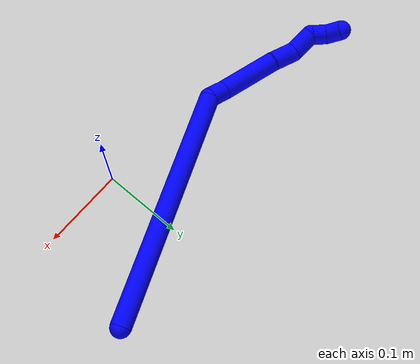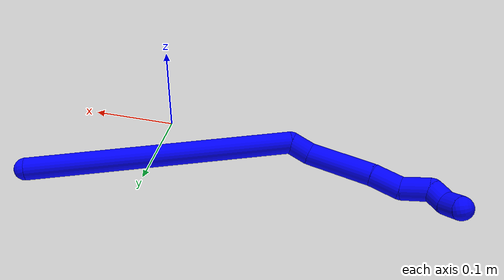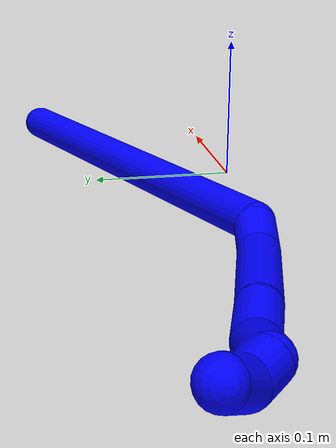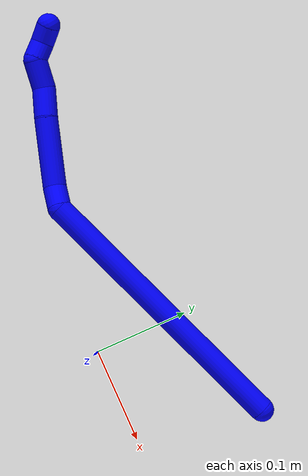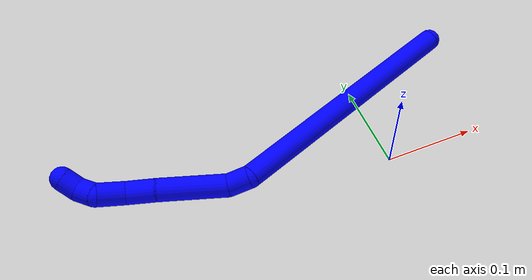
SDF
<sdf version="1.7">
 <world name="default">
  <plugin name="TubeGeneratorPlugin" filename="libtube_generator_plugin.so"/>
  <model name="photoneo_s_sensor">
   <static>1</static>
   <pose>0 0 2 1.57079 1.57079 3.14159</pose>
   <link name="link">
    <inertial><mass>0.1</mass></inertial>
    <sensor name="sensor" type="depth">
     <update_rate>30</update_rate>
     <camera>
      <horizontal_fov>1.22</horizontal_fov>
      <image><width>1920</width><height>1200</height><format>B8G8R8</format></image>
      <clip><near>0.1</near><far>4</far></clip>
      <depth_camera><output>points</output></depth_camera>
     </camera>
     <plugin name="camera_plugin" filename="libgazebo_ros_depth_camera.so">
      <baseline>0.2</baseline>
      <alwaysOn>1</alwaysOn>
      <updateRate>0.0</updateRate>
      <cameraName>camera_ir</cameraName>
      <imageTopicName>/camera/color/image_raw</imageTopicName>
      <cameraInfoTopicName>/camera/color/camera_info</cameraInfoTopicName>
      <depthImageTopicName>/camera/depth/image_raw</depthImageTopicName>
      <depthImageCameraInfoTopicName>/camera/depth/camera_info</depthImageCameraInfoTopicName>
      <pointCloudTopicName>/camera/depth/points</pointCloudTopicName>
      <frameName>fr_optical</frameName>
      <pointCloudCutoff>0.1</pointCloudCutoff>
      <pointCloudCutoffMax>2.0</pointCloudCutoffMax>
      <distortionK1>0</distortionK1>
      <distortionK2>0</distortionK2>
      <distortionK3>0</distortionK3>
      <distortionT1>0</distortionT1>
      <distortionT2>0</distortionT2>
      <CxPrime>0</CxPrime>
      <Cx>0</Cx>
      <Cy>0</Cy>
      <focalLength>0</focalLength>
      <hackBaseline>0</hackBaseline>
     </plugin>
    </sensor>
   </link>
  </model>
  <gravity>0 0 -9.8</gravity>
  <magnetic_field>6e-06 2.3e-05 -4.2e-05</magnetic_field>
  <atmosphere type="adiabatic"/>
  <physics name="default_physics" default="0" type="ode">
   <max_step_size>0.003</max_step_size>
   <real_time_factor>1</real_time_factor>
   <real_time_update_rate>1000</real_time_update_rate>
   <max_contacts>10000</max_contacts>
   <ode>
    <solver>
     <type>quick</type>
     <iters>100</iters>
     <sor>1.3</sor>
     <use_dynamic_moi_rescaling>0</use_dynamic_moi_rescaling>
    </solver>
    <constraints>
     <contact_max_correcting_vel>0</contact_max_correcting_vel>
     <contact_surface_layer>0.001</contact_surface_layer>
     <cfm>0</cfm>
     <erp>0.2</erp>
    </constraints>
   </ode>
  </physics>
  <scene><ambient>0.4 0.4 0.4 1</ambient><background>0.7 0.7 0.7 1</background><shadows>0</shadows></scene>
  <audio><device>default</device></audio>
  <spherical_coordinates>
   <surface_model>EARTH_WGS84</surface_model>
   <latitude_deg>0</latitude_deg>
   <longitude_deg>0</longitude_deg>
   <elevation>0</elevation>
   <heading_deg>0</heading_deg>
  </spherical_coordinates>
  <model name="bin">
   <static>1</static>
   <link name="bottom">
    <collision name="collision-bottom">
     <pose>0 0 -0.01 0 -0 0</pose>
     <geometry><box><size>0.8 0.6 0.02</size></box></geometry>
     <surface>
      <friction><ode><mu>100</mu><mu2>100</mu2></ode></friction>
      <contact><collide_bitmask>65535</collide_bitmask></contact>
     </surface>
    </collision>
   </link>
   <link name="west_wall">
    <collision name="collision-west_wall">
     <pose>-0.41 0 0.1 0 -0 0</pose>
     <geometry><box><size>0.02 0.6 0.2</size></box></geometry>
     <surface>
      <friction><ode><mu>100</mu><mu2>100</mu2></ode></friction>
      <contact><collide_bitmask>65535</collide_bitmask></contact>
     </surface>
    </collision>
   </link>
   <link name="east_wall">
    <collision name="collision-east_wall">
     <pose>0.41 0 0.1 0 -0 0</pose>
     <geometry><box><size>0.02 0.6 0.2</size></box></geometry>
     <surface>
      <friction><ode><mu>100</mu><mu2>100</mu2></ode></friction>
      <contact><collide_bitmask>65535</collide_bitmask></contact>
     </surface>
    </collision>
   </link>
   <link name="south_wall">
    <collision name="collision-south_wall">
     <pose>0 -0.31 0.1 0 -0 0</pose>
     <geometry><box><size>0.8 0.02 0.2</size></box></geometry>
     <surface>
      <friction><ode><mu>100</mu><mu2>100</mu2></ode></friction>
      <contact><collide_bitmask>65535</collide_bitmask></contact>
     </surface>
    </collision>
   </link>
   <link name="north_wall">
    <collision name="collision-north_wall">
     <pose>0 0.31 0.1 0 -0 0</pose>
     <geometry><box><size>0.8 0.02 0.2</size></box></geometry>
     <surface>
      <friction><ode><mu>100</mu><mu2>100</mu2></ode></friction>
      <contact><collide_bitmask>65535</collide_bitmask></contact>
     </surface>
    </collision>
   </link>
  </model>
  <model name="1">
   <static>0</static>
   <link name="1">
    <collision name="collision-cylinder-e_1_1_4">
     <pose>-0.067031 -0.03241 0.128262 0.247506 -0.468978 -0.059411</pose>
     <geometry><cylinder><radius>0.0125</radius><length>0.296613</length></cylinder></geometry>
     <surface>
      <friction><ode><mu>1.16</mu><mu2>1.16</mu2><slip1>0</slip1><slip2>0</slip2></ode></friction>
      <contact><ode><kp>1e+06</kp><kd>1</kd><max_vel>0</max_vel><min_depth>0.001</min_depth></ode></contact>
     </surface>
    </collision>
    <visual name="visual-cylinder-e_1_1_4">
     <pose>-0.067031 -0.03241 0.128262 0.247506 -0.468978 -0.059411</pose>
     <geometry><cylinder><radius>0.0125</radius><length>0.296613</length></cylinder></geometry>
     <material><ambient>0 0 1 1</ambient></material>
    </visual>
    <collision name="collision-cylinder-e_2_4_5">
     <pose>-0.141759 -0.060008 0.265188 -0.507036 -0.660394 0.177141</pose>
     <geometry><cylinder><radius>0.0125</radius><length>0.025097</length></cylinder></geometry>
     <surface>
      <friction><ode><mu>1.16</mu><mu2>1.16</mu2><slip1>0</slip1><slip2>0</slip2></ode></friction>
      <contact><ode><kp>1e+06</kp><kd>1</kd><max_vel>0</max_vel><min_depth>0.001</min_depth></ode></contact>
     </surface>
    </collision>
    <visual name="visual-cylinder-e_2_4_5">
     <pose>-0.141759 -0.060008 0.265188 -0.507036 -0.660394 0.177141</pose>
     <geometry><cylinder><radius>0.0125</radius><length>0.025097</length></cylinder></geometry>
     <material><ambient>0 0 1 1</ambient></material>
    </visual>
    <collision name="collision-cylinder-e_3_5_6">
     <pose>-0.158717 -0.040384 0.306616 -0.424575 -0.252072 0.054606</pose>
     <geometry><cylinder><radius>0.0125</radius><length>0.074261</length></cylinder></geometry>
     <surface>
      <friction><ode><mu>1.16</mu><mu2>1.16</mu2><slip1>0</slip1><slip2>0</slip2></ode></friction>
      <contact><ode><kp>1e+06</kp><kd>1</kd><max_vel>0</max_vel><min_depth>0.001</min_depth></ode></contact>
     </surface>
    </collision>
    <visual name="visual-cylinder-e_3_5_6">
     <pose>-0.158717 -0.040384 0.306616 -0.424575 -0.252072 0.054606</pose>
     <geometry><cylinder><radius>0.0125</radius><length>0.074261</length></cylinder></geometry>
     <material><ambient>0 0 1 1</ambient></material>
    </visual>
    <collision name="collision-cylinder-e_4_6_7">
     <pose>-0.173497 -0.017879 0.352732 -0.522716 -0.343906 0.092837</pose>
     <geometry><cylinder><radius>0.0125</radius><length>0.032736</length></cylinder></geometry>
     <surface>
      <friction><ode><mu>1.16</mu><mu2>1.16</mu2><slip1>0</slip1><slip2>0</slip2></ode></friction>
      <contact><ode><kp>1e+06</kp><kd>1</kd><max_vel>0</max_vel><min_depth>0.001</min_depth></ode></contact>
     </surface>
    </collision>
    <visual name="visual-cylinder-e_4_6_7">
     <pose>-0.173497 -0.017879 0.352732 -0.522716 -0.343906 0.092837</pose>
     <geometry><cylinder><radius>0.0125</radius><length>0.032736</length></cylinder></geometry>
     <material><ambient>0 0 1 1</ambient></material>
    </visual>
    <collision name="collision-cylinder-e_5_7_8">
     <pose>-0.180346 -0.007589 0.381394 -0.16805 -0.08547 0.007203</pose>
     <geometry><cylinder><radius>0.0125</radius><length>0.031172</length></cylinder></geometry>
     <surface>
      <friction><ode><mu>1.16</mu><mu2>1.16</mu2><slip1>0</slip1><slip2>0</slip2></ode></friction>
      <contact><ode><kp>1e+06</kp><kd>1</kd><max_vel>0</max_vel><min_depth>0.001</min_depth></ode></contact>
     </surface>
    </collision>
    <visual name="visual-cylinder-e_5_7_8">
     <pose>-0.180346 -0.007589 0.381394 -0.16805 -0.08547 0.007203</pose>
     <geometry><cylinder><radius>0.0125</radius><length>0.031172</length></cylinder></geometry>
     <material><ambient>0 0 1 1</ambient></material>
    </visual>
    <collision name="collision-cylinder-e_6_8_9">
     <pose>-0.182872 0.002999 0.40262 -0.93354 -0.119733 0.060388</pose>
     <geometry><cylinder><radius>0.0125</radius><length>0.020028</length></cylinder></geometry>
     <surface>
      <friction><ode><mu>1.16</mu><mu2>1.16</mu2><slip1>0</slip1><slip2>0</slip2></ode></friction>
      <contact><ode><kp>1e+06</kp><kd>1</kd><max_vel>0</max_vel><min_depth>0.001</min_depth></ode></contact>
     </surface>
    </collision>
    <visual name="visual-cylinder-e_6_8_9">
     <pose>-0.182872 0.002999 0.40262 -0.93354 -0.119733 0.060388</pose>
     <geometry><cylinder><radius>0.0125</radius><length>0.020028</length></cylinder></geometry>
     <material><ambient>0 0 1 1</ambient></material>
    </visual>
    <collision name="collision-cylinder-e_7_9_2">
     <pose>-0.180544 0.016962 0.415806 -0.687656 0.358457 -0.129556</pose>
     <geometry><cylinder><radius>0.0125</radius><length>0.020094</length></cylinder></geometry>
     <surface>
      <friction><ode><mu>1.16</mu><mu2>1.16</mu2><slip1>0</slip1><slip2>0</slip2></ode></friction>
      <contact><ode><kp>1e+06</kp><kd>1</kd><max_vel>0</max_vel><min_depth>0.001</min_depth></ode></contact>
     </surface>
    </collision>
    <visual name="visual-cylinder-e_7_9_2">
     <pose>-0.180544 0.016962 0.415806 -0.687656 0.358457 -0.129556</pose>
     <geometry><cylinder><radius>0.0125</radius><length>0.020094</length></cylinder></geometry>
     <material><ambient>0 0 1 1</ambient></material>
    </visual>
    <collision name="collision-sphere-2">
     <pose>-0.177019 0.022934 0.423076 0 -0 0</pose>
     <geometry><sphere><radius>0.0125</radius></sphere></geometry>
     <surface>
      <friction><ode><mu>1.16</mu><mu2>1.16</mu2><slip1>0</slip1><slip2>0</slip2></ode></friction>
      <contact><ode><kp>1e+06</kp><kd>1</kd><max_vel>0</max_vel><min_depth>0.001</min_depth></ode></contact>
     </surface>
    </collision>
    <visual name="visual-sphere-2">
     <pose>-0.177019 0.022934 0.423076 0 -0 0</pose>
     <geometry><sphere><radius>0.0125</radius></sphere></geometry>
     <material><ambient>0 0 1 1</ambient></material>
    </visual>
    <collision name="collision-sphere-9">
     <pose>-0.184069 0.01099 0.408536 0 -0 0</pose>
     <geometry><sphere><radius>0.0125</radius></sphere></geometry>
     <surface>
      <friction><ode><mu>1.16</mu><mu2>1.16</mu2><slip1>0</slip1><slip2>0</slip2></ode></friction>
      <contact><ode><kp>1e+06</kp><kd>1</kd><max_vel>0</max_vel><min_depth>0.001</min_depth></ode></contact>
     </surface>
    </collision>
    <visual name="visual-sphere-9">
     <pose>-0.184069 0.01099 0.408536 0 -0 0</pose>
     <geometry><sphere><radius>0.0125</radius></sphere></geometry>
     <material><ambient>0 0 1 1</ambient></material>
    </visual>
    <collision name="collision-sphere-4">
     <pose>-0.134061 -0.06482 0.256525 0 -0 0</pose>
     <geometry><sphere><radius>0.0125</radius></sphere></geometry>
     <surface>
      <friction><ode><mu>1.16</mu><mu2>1.16</mu2><slip1>0</slip1><slip2>0</slip2></ode></friction>
      <contact><ode><kp>1e+06</kp><kd>1</kd><max_vel>0</max_vel><min_depth>0.001</min_depth></ode></contact>
     </surface>
    </collision>
    <visual name="visual-sphere-4">
     <pose>-0.134061 -0.06482 0.256525 0 -0 0</pose>
     <geometry><sphere><radius>0.0125</radius></sphere></geometry>
     <material><ambient>0 0 1 1</ambient></material>
    </visual>
    <collision name="collision-sphere-1">
     <geometry><sphere><radius>0.0125</radius></sphere></geometry>
     <surface>
      <friction><ode><mu>1.16</mu><mu2>1.16</mu2><slip1>0</slip1><slip2>0</slip2></ode></friction>
      <contact><ode><kp>1e+06</kp><kd>1</kd><max_vel>0</max_vel><min_depth>0.001</min_depth></ode></contact>
     </surface>
    </collision>
    <visual name="visual-sphere-1">
     <geometry><sphere><radius>0.0125</radius></sphere></geometry>
     <material><ambient>0 0 1 1</ambient></material>
    </visual>
    <collision name="collision-sphere-8">
     <pose>-0.181676 -0.004992 0.396704 0 -0 0</pose>
     <geometry><sphere><radius>0.0125</radius></sphere></geometry>
     <surface>
      <friction><ode><mu>1.16</mu><mu2>1.16</mu2><slip1>0</slip1><slip2>0</slip2></ode></friction>
      <contact><ode><kp>1e+06</kp><kd>1</kd><max_vel>0</max_vel><min_depth>0.001</min_depth></ode></contact>
     </surface>
    </collision>
    <visual name="visual-sphere-8">
     <pose>-0.181676 -0.004992 0.396704 0 -0 0</pose>
     <geometry><sphere><radius>0.0125</radius></sphere></geometry>
     <material><ambient>0 0 1 1</ambient></material>
    </visual>
    <collision name="collision-sphere-5">
     <pose>-0.149456 -0.055196 0.273851 0 -0 0</pose>
     <geometry><sphere><radius>0.0125</radius></sphere></geometry>
     <surface>
      <friction><ode><mu>1.16</mu><mu2>1.16</mu2><slip1>0</slip1><slip2>0</slip2></ode></friction>
      <contact><ode><kp>1e+06</kp><kd>1</kd><max_vel>0</max_vel><min_depth>0.001</min_depth></ode></contact>
     </surface>
    </collision>
    <visual name="visual-sphere-5">
     <pose>-0.149456 -0.055196 0.273851 0 -0 0</pose>
     <geometry><sphere><radius>0.0125</radius></sphere></geometry>
     <material><ambient>0 0 1 1</ambient></material>
    </visual>
    <collision name="collision-sphere-6">
     <pose>-0.167978 -0.025572 0.339381 0 -0 0</pose>
     <geometry><sphere><radius>0.0125</radius></sphere></geometry>
     <surface>
      <friction><ode><mu>1.16</mu><mu2>1.16</mu2><slip1>0</slip1><slip2>0</slip2></ode></friction>
      <contact><ode><kp>1e+06</kp><kd>1</kd><max_vel>0</max_vel><min_depth>0.001</min_depth></ode></contact>
     </surface>
    </collision>
    <visual name="visual-sphere-6">
     <pose>-0.167978 -0.025572 0.339381 0 -0 0</pose>
     <geometry><sphere><radius>0.0125</radius></sphere></geometry>
     <material><ambient>0 0 1 1</ambient></material>
    </visual>
    <collision name="collision-sphere-7">
     <pose>-0.179015 -0.010186 0.366084 0 -0 0</pose>
     <geometry><sphere><radius>0.0125</radius></sphere></geometry>
     <surface>
      <friction><ode><mu>1.16</mu><mu2>1.16</mu2><slip1>0</slip1><slip2>0</slip2></ode></friction>
      <contact><ode><kp>1e+06</kp><kd>1</kd><max_vel>0</max_vel><min_depth>0.001</min_depth></ode></contact>
     </surface>
    </collision>
    <visual name="visual-sphere-7">
     <pose>-0.179015 -0.010186 0.366084 0 -0 0</pose>
     <geometry><sphere><radius>0.0125</radius></sphere></geometry>
     <material><ambient>0 0 1 1</ambient></material>
    </visual>
    <inertial>
     <pose>-0.107636 -0.029078 0.214648 0 -0 0</pose>
     <mass>0.5</mass>
     <inertia>
      <ixx>0.001868</ixx>
      <ixy>0</ixy>
      <ixz>0</ixz>
      <iyy>0.002064</iyy>
      <iyz>0</iyz>
      <izz>0.001491</izz>
     </inertia>
    </inertial>
   </link>
   <pose>0.124023 0.131748 0.012285 -0.597836 -1.04428 0.678443</pose>
  </model>
 </world>
</sdf>
